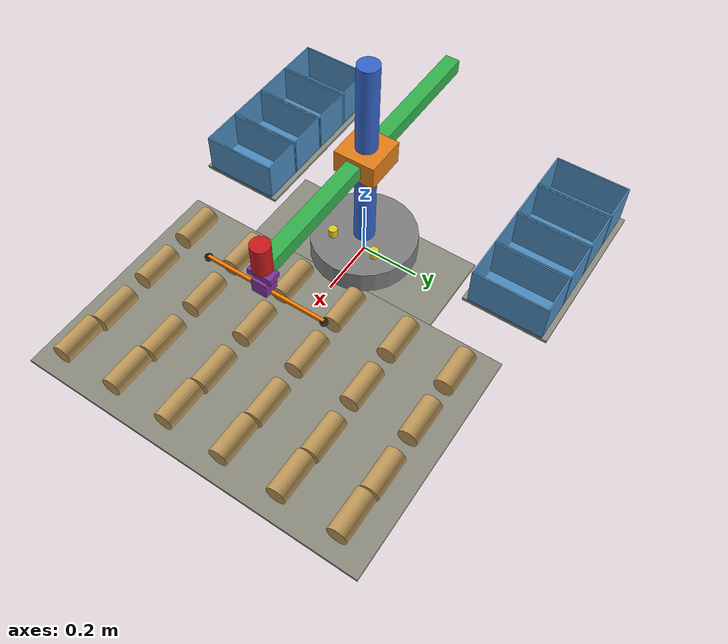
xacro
<?xml version="1.0"?>
<robot name="soki_sim" xmlns:xacro="http://www.ros.org/wiki/xacro">

  <!-- 寸法パラメータ -->
  <xacro:property name="base_radius" value="0.18"/>
  <xacro:property name="base_height" value="0.08"/>

  <xacro:property name="mast_radius" value="0.035"/>
  <xacro:property name="mast_height" value="0.7"/>

  <xacro:property name="lift_size_xy" value="0.14"/>
  <xacro:property name="lift_size_z" value="0.08"/>
  <xacro:property name="z_lower" value="0.118"/>
  <xacro:property name="z_upper" value="0.508"/>

  <xacro:property name="arm_length" value="1.0195"/>
  <xacro:property name="arm_size_yz" value="0.05"/>
  <xacro:property name="r_lower" value="${-arm_length / 2}"/>
  <xacro:property name="r_upper" value="${arm_length / 2}"/>

  <xacro:property name="tip_radius" value="0.03"/>
  <xacro:property name="tip_height" value="0.1"/>

  <!-- motor1/motor2: z_joint/r_jointを駆動する差動機構のインジケータ -->
  <!-- z = mix_k*(m1+m2), r = mix_k*(m1-m2) の関係上、m1/m2の可動域は
       m1,m2 = z +/- r の取り得る範囲(z_lower+r_lower 〜 z_upper+r_upper)に一致させる -->
  <xacro:property name="motor_indicator_radius" value="0.015"/>
  <xacro:property name="motor_indicator_height" value="0.06"/>
  <xacro:property name="motor_offset_y" value="0.08"/>
  <xacro:property name="motor_lower" value="${z_lower + r_lower}"/>
  <xacro:property name="motor_upper" value="${z_upper + r_upper}"/>

  <xacro:property name="joint_velocity" value="1.0"/>
  <xacro:property name="joint_effort" value="10.0"/>

  <xacro:property name="root_theta_reduction" value="${112.0 / 24.0}"/>
  <xacro:property name="root_theta_limit" value="${12.5 / root_theta_reduction}"/>

  <!-- マテリアル -->
  <material name="base_grey">
    <color rgba="0.5 0.5 0.5 1.0"/>
  </material>
  <material name="turret_blue">
    <color rgba="0.2 0.4 0.8 1.0"/>
  </material>
  <material name="lift_orange">
    <color rgba="0.9 0.5 0.1 1.0"/>
  </material>
  <material name="arm_green">
    <color rgba="0.2 0.7 0.3 1.0"/>
  </material>
  <material name="tip_red">
    <color rgba="0.8 0.1 0.1 1.0"/>
  </material>
  <material name="motor_yellow">
    <color rgba="0.9 0.8 0.1 1.0"/>
  </material>
  <material name="board_grey">
    <color rgba="0.55 0.55 0.5 1.0"/>
  </material>
  <material name="work_tan">
    <color rgba="0.75 0.6 0.35 1.0"/>
  </material>

  <!-- base_link: 固定の台座 -->
  <link name="base_link">
    <visual>
      <origin xyz="0 0 ${base_height / 2}" rpy="0 0 0"/>
      <geometry>
        <cylinder radius="${base_radius}" length="${base_height}"/>
      </geometry>
      <material name="base_grey"/>
    </visual>
  </link>

  <!-- turret_link: 旋回台+マスト (root_theta_joint で旋回) -->
  <link name="turret_link">
    <visual>
      <origin xyz="0 0 ${mast_height / 2}" rpy="0 0 0"/>
      <geometry>
        <cylinder radius="${mast_radius}" length="${mast_height}"/>
      </geometry>
      <material name="turret_blue"/>
    </visual>
  </link>

  <joint name="root_theta_joint" type="revolute">
    <parent link="base_link"/>
    <child link="turret_link"/>
    <origin xyz="0 0 ${base_height}" rpy="0 0 0"/>
    <axis xyz="0 0 1"/>
    <dynamics damping="0.1"/>
    <limit lower="${-root_theta_limit}" upper="${root_theta_limit}"
           effort="${joint_effort}" velocity="${joint_velocity}"/>
  </joint>

  <!-- motor1_link/motor2_link: 差動機構の各モータ位置を示すインジケータ -->
  <!-- 実際の見た目(マスト昇降・アーム伸縮)を動かすのはz_joint/r_jointであり、
       motor1_joint/motor2_jointはturret_link横で上下するだけの表示専用リンク -->
  <link name="motor1_link">
    <visual>
      <origin xyz="0 0 0" rpy="0 0 0"/>
      <geometry>
        <cylinder radius="${motor_indicator_radius}" length="${motor_indicator_height}"/>
      </geometry>
      <material name="motor_yellow"/>
    </visual>
  </link>

  <joint name="motor1_joint" type="prismatic">
    <parent link="turret_link"/>
    <child link="motor1_link"/>
    <origin xyz="${mast_radius + 0.03} ${motor_offset_y} 0" rpy="0 0 0"/>
    <axis xyz="0 0 1"/>
    <limit lower="${motor_lower}" upper="${motor_upper}" effort="${joint_effort}" velocity="${joint_velocity}"/>
  </joint>

  <link name="motor2_link">
    <visual>
      <origin xyz="0 0 0" rpy="0 0 0"/>
      <geometry>
        <cylinder radius="${motor_indicator_radius}" length="${motor_indicator_height}"/>
      </geometry>
      <material name="motor_yellow"/>
    </visual>
  </link>

  <joint name="motor2_joint" type="prismatic">
    <parent link="turret_link"/>
    <child link="motor2_link"/>
    <origin xyz="${mast_radius + 0.03} ${-motor_offset_y} 0" rpy="0 0 0"/>
    <axis xyz="0 0 1"/>
    <limit lower="${motor_lower}" upper="${motor_upper}" effort="${joint_effort}" velocity="${joint_velocity}"/>
  </joint>

  <!-- lift_link: マストに沿って昇降するキャリッジ (z_joint) -->
  <link name="lift_link">
    <visual>
      <origin xyz="0 0 0" rpy="0 0 0"/>
      <geometry>
        <box size="${lift_size_xy} ${lift_size_xy} ${lift_size_z}"/>
      </geometry>
      <material name="lift_orange"/>
    </visual>
  </link>

  <joint name="z_joint" type="prismatic">
    <parent link="turret_link"/>
    <child link="lift_link"/>
    <origin xyz="0 0 ${lift_size_z / 2}" rpy="0 0 0"/>
    <axis xyz="0 0 1"/>
    <limit lower="${z_lower}" upper="${z_upper}" effort="${joint_effort}" velocity="${joint_velocity}"/>
  </joint>

  <!-- arm_link: キャリッジから水平に伸縮するアーム (r_joint) -->
  <!-- r_joint の原点(r=0)がアームの中心になるよう、visualはarm_link原点を中心に配置する -->
  <link name="arm_link">
    <visual>
      <origin xyz="0 0 0" rpy="0 0 0"/>
      <geometry>
        <box size="${arm_length} ${arm_size_yz} ${arm_size_yz}"/>
      </geometry>
      <material name="arm_green"/>
    </visual>
  </link>

  <joint name="r_joint" type="prismatic">
    <parent link="lift_link"/>
    <child link="arm_link"/>
    <origin xyz="0 0 0" rpy="0 0 0"/>
    <axis xyz="1 0 0"/>
    <limit lower="${r_lower}" upper="${r_upper}" effort="${joint_effort}" velocity="${joint_velocity}"/>
  </joint>

  <!-- tip_link: アーム先端で回転する手先 (tip_theta_joint) -->
  <link name="tip_link">
    <visual>
      <origin xyz="0 0 ${tip_height / 2}" rpy="0 0 0"/>
      <geometry>
        <cylinder radius="${tip_radius}" length="${tip_height}"/>
      </geometry>
      <material name="tip_red"/>
    </visual>
  </link>

  <joint name="tip_theta_joint" type="continuous">
    <parent link="arm_link"/>
    <child link="tip_link"/>
    <origin xyz="${arm_length / 2} 0 0" rpy="0 0 0"/>
    <axis xyz="0 0 1"/>
    <dynamics damping="0.1"/>
    <limit effort="${joint_effort}" velocity="${joint_velocity}"/>
  </joint>

  <xacro:property name="hand_deploy_size" value="0.05"/>
  <xacro:property name="hand_pitch_size" value="0.04"/>
  <xacro:property name="pad_radius" value="0.012"/>
  <xacro:property name="pad_height" value="0.008"/>
  <!-- 同一行のワーク間隔(command_gui_node.pyのWORK_COL_PITCHと一致させること)。
       展開(spread)状態でのパッド間隔に使う。 -->
  <xacro:property name="hand_row_pitch" value="0.200"/>
  <!-- 集約(gathered)後の正三角形の一辺。要実測、現状は仮値。 -->
  <xacro:property name="hand_gather_side" value="0.08"/>
  <xacro:property name="hand_pad_side_travel" value="0.174356"/>
  <xacro:property name="hand_pad_side_axis_x" value="0"/>
  <xacro:property name="hand_pad_side_axis_y" value="0.917663"/>
  <xacro:property name="hand_pad_side_axis_z" value="-0.397360"/>
  <xacro:property name="hand_servo_lower" value="0.0"/>
  <xacro:property name="hand_servo_upper" value="${pi / 2}"/>
  <xacro:property name="hand_indicator_length" value="${hand_row_pitch * 2}"/>
  <xacro:property name="hand_indicator_thickness" value="0.01"/>

  <material name="hand_purple">
    <color rgba="0.5 0.2 0.6 1.0"/>
  </material>
  <material name="pad_black">
    <color rgba="0.1 0.1 0.1 1.0"/>
  </material>
  <material name="hand_indicator_orange">
    <color rgba="1.0 0.5 0.0 1.0"/>
  </material>

  <xacro:property name="hand_offset_limit" value="0.3"/>

  <link name="hand_offset_x_link"/>
  <joint name="hand_offset_x_joint" type="prismatic">
    <parent link="tip_link"/>
    <child link="hand_offset_x_link"/>
    <origin xyz="0 0 0" rpy="0 0 0"/>
    <axis xyz="1 0 0"/>
    <limit lower="${-hand_offset_limit}" upper="${hand_offset_limit}"
           effort="${joint_effort}" velocity="${joint_velocity}"/>
  </joint>

  <link name="hand_offset_y_link"/>
  <joint name="hand_offset_y_joint" type="prismatic">
    <parent link="hand_offset_x_link"/>
    <child link="hand_offset_y_link"/>
    <origin xyz="0 0 0" rpy="0 0 0"/>
    <axis xyz="0 1 0"/>
    <limit lower="${-hand_offset_limit}" upper="${hand_offset_limit}"
           effort="${joint_effort}" velocity="${joint_velocity}"/>
  </joint>

  <link name="hand_offset_link"/>
  <joint name="hand_offset_z_joint" type="prismatic">
    <parent link="hand_offset_y_link"/>
    <child link="hand_offset_link"/>
    <origin xyz="0 0 0" rpy="0 0 0"/>
    <axis xyz="0 0 1"/>
    <limit lower="${-hand_offset_limit}" upper="${hand_offset_limit}"
           effort="${joint_effort}" velocity="${joint_velocity}"/>
  </joint>

  <!-- ワークピッチ変更サーボ(pitch): 保持(0deg)/投入(90deg)相当。シューティング
       ボックスへ縦向きに投入するため、吸着パッド一式(=保持したワーク)の
       向きを変える。hand_offset_link(tip_linkの下面、関節原点、z=0を基準に
       ハンド取付オフセットを適用した位置)に取り付く。 -->
  <link name="hand_pitch_link">
    <visual>
      <origin xyz="0 0 ${-hand_pitch_size / 2}" rpy="0 0 0"/>
      <geometry>
        <box size="${hand_pitch_size} ${hand_pitch_size * 2} ${hand_pitch_size / 2}"/>
      </geometry>
      <material name="hand_purple"/>
    </visual>
  </link>

  <joint name="hand_pitch_joint" type="revolute">
    <parent link="hand_offset_link"/>
    <child link="hand_pitch_link"/>
    <origin xyz="0 0 0" rpy="0 0 0"/>
    <axis xyz="0 1 0"/>
    <limit lower="${hand_servo_lower}" upper="${hand_servo_upper}"
           effort="${joint_effort}" velocity="${joint_velocity}"/>
  </joint>

  <!-- ハンド本体(取付ブラケット相当、固定)。3つの吸着パッドはここから
       spread(同一行のワーク間隔)⇔gathered(正三角形)へprismatic関節で動く。
       hand_pitch_linkの下面に取り付くため、pitch回転と一緒にパッド一式も
       向きが変わる。 -->
  <link name="hand_deploy_link">
    <visual>
      <origin xyz="0 0 ${-hand_deploy_size / 2}" rpy="0 0 0"/>
      <geometry>
        <box size="${hand_deploy_size} ${hand_deploy_size} ${hand_deploy_size}"/>
      </geometry>
      <material name="hand_purple"/>
    </visual>
  </link>

  <joint name="hand_deploy_mount_joint" type="fixed">
    <parent link="hand_pitch_link"/>
    <child link="hand_deploy_link"/>
    <origin xyz="0 0 ${-hand_pitch_size}" rpy="0 0 0"/>
  </joint>

  <!-- ハンドの向きインジケータ(固定、見た目のみ)。アーム(x軸方向)に対して
       直角(y軸方向)に、展開(spread)時の3パッドの並びとちょうど同じ長さの
       バーを配置する。パッド同士を繋ぐ可動棒(2026-09-03に一度追加したが
       同日廃止)の代わりに、ハンドの向きを一目で判別するための固定参照物と
       して追加した(2026-09-03)。 -->
  <link name="hand_indicator_link">
    <visual>
      <origin xyz="0 0 0" rpy="0 0 0"/>
      <geometry>
        <box size="${hand_indicator_thickness} ${hand_indicator_length} ${hand_indicator_thickness}"/>
      </geometry>
      <material name="hand_indicator_orange"/>
    </visual>
  </link>

  <joint name="hand_indicator_joint" type="fixed">
    <parent link="hand_deploy_link"/>
    <child link="hand_indicator_link"/>
    <origin xyz="0 0 ${-hand_deploy_size}" rpy="0 0 0"/>
  </joint>

  <xacro:macro name="suction_pad" params="name origin_y axis_x axis_y axis_z travel">
    <link name="${name}">
      <visual>
        <origin xyz="0 0 ${-pad_height / 2}" rpy="0 0 0"/>
        <geometry>
          <cylinder radius="${pad_radius}" length="${pad_height}"/>
        </geometry>
        <material name="pad_black"/>
      </visual>
    </link>
    <joint name="${name}_joint" type="prismatic">
      <parent link="hand_deploy_link"/>
      <child link="${name}"/>
      <origin xyz="0 ${origin_y} ${-hand_deploy_size}" rpy="0 0 0"/>
      <axis xyz="${axis_x} ${axis_y} ${axis_z}"/>
      <limit lower="0" upper="${travel}" effort="${joint_effort}" velocity="${joint_velocity}"/>
    </joint>
  </xacro:macro>
  <!-- joint値0=spread(同一行のワーク間隔で並ぶ)、joint値=travel(上限)で
       gathered(正三角形、フィールド側=-zへも近づく)になる。
       suction_pad_2(中央)はtravel=0で動かず、spread時の位置がそのまま
       正三角形の1頂点になる。 -->
  <xacro:suction_pad name="suction_pad_1" origin_y="${-hand_row_pitch}"
                      axis_x="${hand_pad_side_axis_x}" axis_y="${hand_pad_side_axis_y}"
                      axis_z="${hand_pad_side_axis_z}" travel="${hand_pad_side_travel}"/>
  <xacro:suction_pad name="suction_pad_2" origin_y="0" axis_x="1" axis_y="0"
                      axis_z="0" travel="0"/>
  <xacro:suction_pad name="suction_pad_3" origin_y="${hand_row_pitch}"
                      axis_x="${hand_pad_side_axis_x}" axis_y="${-hand_pad_side_axis_y}"
                      axis_z="${hand_pad_side_axis_z}" travel="${hand_pad_side_travel}"/>

  <xacro:property name="machine_origin_offset_limit" value="1.0"/>

  <link name="machine_origin_x_link"/>
  <joint name="machine_origin_x_joint" type="prismatic">
    <parent link="base_link"/>
    <child link="machine_origin_x_link"/>
    <origin xyz="0 0 0" rpy="0 0 0"/>
    <axis xyz="1 0 0"/>
    <limit lower="${-machine_origin_offset_limit}" upper="${machine_origin_offset_limit}"
           effort="${joint_effort}" velocity="${joint_velocity}"/>
  </joint>

  <link name="machine_origin_y_link"/>
  <joint name="machine_origin_y_joint" type="prismatic">
    <parent link="machine_origin_x_link"/>
    <child link="machine_origin_y_link"/>
    <origin xyz="0 0 0" rpy="0 0 0"/>
    <axis xyz="0 1 0"/>
    <limit lower="${-machine_origin_offset_limit}" upper="${machine_origin_offset_limit}"
           effort="${joint_effort}" velocity="${joint_velocity}"/>
  </joint>

  <link name="machine_origin_link"/>
  <joint name="machine_origin_z_joint" type="prismatic">
    <parent link="machine_origin_y_link"/>
    <child link="machine_origin_link"/>
    <origin xyz="0 0 0" rpy="0 0 0"/>
    <axis xyz="0 0 1"/>
    <limit lower="${-machine_origin_offset_limit}" upper="${machine_origin_offset_limit}"
           effort="${joint_effort}" velocity="${joint_velocity}"/>
  </joint>

  <!-- 機体が乗っている板 -->
  <xacro:property name="field_robot_board_width" value="0.690"/>
  <xacro:property name="field_robot_board_depth" value="0.290"/>
  <!-- 板の厚み(実測値未確認のため仮値。前面の板も同じ高さとして扱う) -->
  <xacro:property name="field_board_thickness" value="0.01"/>

  <!-- machine_origin_link(機体原点)から、板の前端(ワーク側。以下の49mm等はここが基準)
       までの奥行き方向オフセット。現状は板の奥行き中心にロボットが乗っている想定
       (290mm/2)。実機のロボット搭載位置に合わせてここだけ調整すればよい -->
  <xacro:property name="field_board_edge_offset" value="${field_robot_board_depth / 2}"/>

  <!-- 前面の板(ワークが並ぶ側)。幅・奥行きは仕様未指定のため、
       ワーク配置(4行分)+余白を確保する仮の大きさにしている -->
  <xacro:property name="field_front_board_width" value="1.20"/>
  <xacro:property name="field_front_board_margin" value="0.05"/>

  <!-- ワーク(円柱、横倒し。軸方向=奥行き(X)方向、底面(1行目に近い面)を機体側とする) -->
  <xacro:property name="work_diameter" value="0.066"/>
  <xacro:property name="work_length" value="0.142"/>
  <xacro:property name="work_rest_z" value="${work_diameter / 2}"/>

  <!-- 行間隔(奥行き方向)。板前端から1行目近位端まで49mm、以降 行間58/58/13mm -->
  <xacro:property name="field_row_gap0" value="0.049"/>
  <xacro:property name="field_row_gap1" value="0.058"/>
  <xacro:property name="field_row_gap2" value="0.058"/>
  <xacro:property name="field_row_gap3" value="0.013"/>
  <xacro:property name="field_row4_z_lift" value="0.020"/>

  <!-- 各行の近位端(機体側の底面)・遠位端のX座標(machine_origin_link基準) -->
  <xacro:property name="row1_near_x" value="${field_board_edge_offset + field_row_gap0}"/>
  <xacro:property name="row1_far_x" value="${row1_near_x + work_length}"/>
  <xacro:property name="row2_near_x" value="${row1_far_x + field_row_gap1}"/>
  <xacro:property name="row2_far_x" value="${row2_near_x + work_length}"/>
  <xacro:property name="row3_near_x" value="${row2_far_x + field_row_gap2}"/>
  <xacro:property name="row3_far_x" value="${row3_near_x + work_length}"/>
  <xacro:property name="row4_near_x" value="${row3_far_x + field_row_gap3}"/>
  <xacro:property name="row4_far_x" value="${row4_near_x + work_length}"/>

  <!-- 各行の中心X座標・高さ(4行目のみ20mm高い) -->
  <xacro:property name="row1_x" value="${row1_near_x + work_length / 2}"/>
  <xacro:property name="row2_x" value="${row2_near_x + work_length / 2}"/>
  <xacro:property name="row3_x" value="${row3_near_x + work_length / 2}"/>
  <xacro:property name="row4_x" value="${row4_near_x + work_length / 2}"/>
  <xacro:property name="row1_z" value="${work_rest_z}"/>
  <xacro:property name="row2_z" value="${work_rest_z}"/>
  <xacro:property name="row3_z" value="${work_rest_z}"/>
  <xacro:property name="row4_z" value="${work_rest_z + field_row4_z_lift}"/>

  <!-- 列(幅方向、6列)の中心間ピッチ200mmと各列Y座標(ワーク群中心線=Y0に整列) -->
  <xacro:property name="work_col_pitch" value="0.200"/>
  <xacro:property name="col1_y" value="${-2.5 * work_col_pitch}"/>
  <xacro:property name="col2_y" value="${-1.5 * work_col_pitch}"/>
  <xacro:property name="col3_y" value="${-0.5 * work_col_pitch}"/>
  <xacro:property name="col4_y" value="${0.5 * work_col_pitch}"/>
  <xacro:property name="col5_y" value="${1.5 * work_col_pitch}"/>
  <xacro:property name="col6_y" value="${2.5 * work_col_pitch}"/>

  <xacro:property name="field_front_board_depth"
                   value="${row4_far_x - field_board_edge_offset + field_front_board_margin}"/>

  <!-- 機体が乗っている板の中心X座標(machine_origin_link基準) -->
  <xacro:property name="field_robot_board_center_x" value="${field_board_edge_offset - field_robot_board_depth / 2}"/>

  <!-- 機体が乗っている板 -->
  <link name="robot_board_link">
    <visual>
      <origin xyz="${field_board_edge_offset - field_robot_board_depth / 2} 0 ${-field_board_thickness / 2}" rpy="0 0 0"/>
      <geometry>
        <box size="${field_robot_board_depth} ${field_robot_board_width} ${field_board_thickness}"/>
      </geometry>
      <material name="board_grey"/>
    </visual>
  </link>
  <joint name="robot_board_joint" type="fixed">
    <parent link="machine_origin_link"/>
    <child link="robot_board_link"/>
  </joint>

  <!-- 前面の板(ワーク設置面。機体の板と同じ高さ) -->
  <link name="front_board_link">
    <visual>
      <origin xyz="${field_board_edge_offset + field_front_board_depth / 2} 0 ${-field_board_thickness / 2}" rpy="0 0 0"/>
      <geometry>
        <box size="${field_front_board_depth} ${field_front_board_width} ${field_board_thickness}"/>
      </geometry>
      <material name="board_grey"/>
    </visual>
  </link>
  <joint name="front_board_joint" type="fixed">
    <parent link="machine_origin_link"/>
    <child link="front_board_link"/>
  </joint>

  <!-- ワーク(円柱、横倒し) -->
  <xacro:macro name="workpiece" params="name x y z">
    <link name="${name}">
      <visual>
        <origin xyz="0 0 0" rpy="0 ${pi / 2} 0"/>
        <geometry>
          <cylinder radius="${work_diameter / 2}" length="${work_length}"/>
        </geometry>
        <material name="work_tan"/>
      </visual>
    </link>
    <joint name="${name}_joint" type="fixed">
      <parent link="machine_origin_link"/>
      <child link="${name}"/>
      <origin xyz="${x} ${y} ${z}" rpy="0 0 0"/>
    </joint>
  </xacro:macro>

  <xacro:workpiece name="work_1_1" x="${row1_x}" y="${col1_y}" z="${row1_z}"/>
  <xacro:workpiece name="work_1_2" x="${row1_x}" y="${col2_y}" z="${row1_z}"/>
  <xacro:workpiece name="work_1_3" x="${row1_x}" y="${col3_y}" z="${row1_z}"/>
  <xacro:workpiece name="work_1_4" x="${row1_x}" y="${col4_y}" z="${row1_z}"/>
  <xacro:workpiece name="work_1_5" x="${row1_x}" y="${col5_y}" z="${row1_z}"/>
  <xacro:workpiece name="work_1_6" x="${row1_x}" y="${col6_y}" z="${row1_z}"/>

  <xacro:workpiece name="work_2_1" x="${row2_x}" y="${col1_y}" z="${row2_z}"/>
  <xacro:workpiece name="work_2_2" x="${row2_x}" y="${col2_y}" z="${row2_z}"/>
  <xacro:workpiece name="work_2_3" x="${row2_x}" y="${col3_y}" z="${row2_z}"/>
  <xacro:workpiece name="work_2_4" x="${row2_x}" y="${col4_y}" z="${row2_z}"/>
  <xacro:workpiece name="work_2_5" x="${row2_x}" y="${col5_y}" z="${row2_z}"/>
  <xacro:workpiece name="work_2_6" x="${row2_x}" y="${col6_y}" z="${row2_z}"/>

  <xacro:workpiece name="work_3_1" x="${row3_x}" y="${col1_y}" z="${row3_z}"/>
  <xacro:workpiece name="work_3_2" x="${row3_x}" y="${col2_y}" z="${row3_z}"/>
  <xacro:workpiece name="work_3_3" x="${row3_x}" y="${col3_y}" z="${row3_z}"/>
  <xacro:workpiece name="work_3_4" x="${row3_x}" y="${col4_y}" z="${row3_z}"/>
  <xacro:workpiece name="work_3_5" x="${row3_x}" y="${col5_y}" z="${row3_z}"/>
  <xacro:workpiece name="work_3_6" x="${row3_x}" y="${col6_y}" z="${row3_z}"/>

  <xacro:workpiece name="work_4_1" x="${row4_x}" y="${col1_y}" z="${row4_z}"/>
  <xacro:workpiece name="work_4_2" x="${row4_x}" y="${col2_y}" z="${row4_z}"/>
  <xacro:workpiece name="work_4_3" x="${row4_x}" y="${col3_y}" z="${row4_z}"/>
  <xacro:workpiece name="work_4_4" x="${row4_x}" y="${col4_y}" z="${row4_z}"/>
  <xacro:workpiece name="work_4_5" x="${row4_x}" y="${col5_y}" z="${row4_z}"/>
  <xacro:workpiece name="work_4_6" x="${row4_x}" y="${col6_y}" z="${row4_z}"/>

  <!-- ==================== シューティングエリア(左右) ====================
       ワークをシュートして集める左右のエリア。機体が乗っている板の中心から
       ワークと反対方向(-X)に305mm、そこからさらに左右(Y)に525mmの位置が
       各エリアの板の中心。板の短辺(300mm)がワーク底面と平行(=X方向)。 -->

  <xacro:property name="shoot_offset_x" value="0.305"/>
  <xacro:property name="shoot_offset_y" value="0.525"/>
  <xacro:property name="shoot_board_width" value="0.300"/>
  <xacro:property name="shoot_board_depth" value="0.600"/>
  <xacro:property name="shoot_center_x" value="${field_robot_board_center_x - shoot_offset_x}"/>

  <material name="shoot_box_material">
    <color rgba="0.3 0.55 0.75 1.0"/>
  </material>

  <xacro:macro name="shoot_board" params="name y">
    <link name="${name}">
      <visual>
        <origin xyz="${shoot_center_x} ${y} ${-field_board_thickness / 2}" rpy="0 0 0"/>
        <geometry>
          <box size="${shoot_board_depth} ${shoot_board_width} ${field_board_thickness}"/>
        </geometry>
        <material name="board_grey"/>
      </visual>
    </link>
    <joint name="${name}_joint" type="fixed">
      <parent link="machine_origin_link"/>
      <child link="${name}"/>
    </joint>
  </xacro:macro>

  <xacro:shoot_board name="shoot_board_left" y="${shoot_offset_y}"/>
  <xacro:shoot_board name="shoot_board_right" y="${-shoot_offset_y}"/>

  <!-- シュートを受ける箱(内径255x138、高さ145、板厚5mm、上面開放の5枚組)。
       長辺(255mm)がワーク底面と平行(=Y方向)。板幅300mmには1個しか並ばないため
       奥行き(X)方向に4個、箱間2mmの隙間をあけて板の奥行き中心に揃えて並べる。 -->
  <xacro:property name="shoot_box_inner_x" value="0.138"/>
  <xacro:property name="shoot_box_inner_y" value="0.255"/>
  <xacro:property name="shoot_box_wall" value="0.005"/>
  <xacro:property name="shoot_box_height" value="0.145"/>
  <xacro:property name="shoot_box_outer_x" value="${shoot_box_inner_x + 2 * shoot_box_wall}"/>
  <xacro:property name="shoot_box_outer_y" value="${shoot_box_inner_y + 2 * shoot_box_wall}"/>
  <xacro:property name="shoot_box_wall_height" value="${shoot_box_height - shoot_box_wall}"/>
  <xacro:property name="shoot_box_gap" value="0.002"/>
  <xacro:property name="shoot_box_pitch" value="${shoot_box_outer_x + shoot_box_gap}"/>

  <xacro:property name="shoot_box_pos1" value="${-1.5 * shoot_box_pitch}"/>
  <xacro:property name="shoot_box_pos2" value="${-0.5 * shoot_box_pitch}"/>
  <xacro:property name="shoot_box_pos3" value="${0.5 * shoot_box_pitch}"/>
  <xacro:property name="shoot_box_pos4" value="${1.5 * shoot_box_pitch}"/>

  <xacro:macro name="shoot_box" params="name x y">
    <link name="${name}">
      <visual>
        <origin xyz="0 0 ${shoot_box_wall / 2}" rpy="0 0 0"/>
        <geometry>
          <box size="${shoot_box_outer_x} ${shoot_box_outer_y} ${shoot_box_wall}"/>
        </geometry>
        <material name="shoot_box_material"/>
      </visual>
      <visual>
        <origin xyz="${shoot_box_outer_x / 2 - shoot_box_wall / 2} 0 ${shoot_box_wall + shoot_box_wall_height / 2}" rpy="0 0 0"/>
        <geometry>
          <box size="${shoot_box_wall} ${shoot_box_outer_y} ${shoot_box_wall_height}"/>
        </geometry>
        <material name="shoot_box_material"/>
      </visual>
      <visual>
        <origin xyz="${-(shoot_box_outer_x / 2 - shoot_box_wall / 2)} 0 ${shoot_box_wall + shoot_box_wall_height / 2}" rpy="0 0 0"/>
        <geometry>
          <box size="${shoot_box_wall} ${shoot_box_outer_y} ${shoot_box_wall_height}"/>
        </geometry>
        <material name="shoot_box_material"/>
      </visual>
      <visual>
        <origin xyz="0 ${shoot_box_outer_y / 2 - shoot_box_wall / 2} ${shoot_box_wall + shoot_box_wall_height / 2}" rpy="0 0 0"/>
        <geometry>
          <box size="${shoot_box_inner_x} ${shoot_box_wall} ${shoot_box_wall_height}"/>
        </geometry>
        <material name="shoot_box_material"/>
      </visual>
      <visual>
        <origin xyz="0 ${-(shoot_box_outer_y / 2 - shoot_box_wall / 2)} ${shoot_box_wall + shoot_box_wall_height / 2}" rpy="0 0 0"/>
        <geometry>
          <box size="${shoot_box_inner_x} ${shoot_box_wall} ${shoot_box_wall_height}"/>
        </geometry>
        <material name="shoot_box_material"/>
      </visual>
    </link>
    <joint name="${name}_joint" type="fixed">
      <parent link="machine_origin_link"/>
      <child link="${name}"/>
      <origin xyz="${x} ${y} 0" rpy="0 0 0"/>
    </joint>
  </xacro:macro>

  <xacro:shoot_box name="shoot_box_left_1" x="${shoot_center_x + shoot_box_pos1}" y="${shoot_offset_y}"/>
  <xacro:shoot_box name="shoot_box_left_2" x="${shoot_center_x + shoot_box_pos2}" y="${shoot_offset_y}"/>
  <xacro:shoot_box name="shoot_box_left_3" x="${shoot_center_x + shoot_box_pos3}" y="${shoot_offset_y}"/>
  <xacro:shoot_box name="shoot_box_left_4" x="${shoot_center_x + shoot_box_pos4}" y="${shoot_offset_y}"/>

  <xacro:shoot_box name="shoot_box_right_1" x="${shoot_center_x + shoot_box_pos1}" y="${-shoot_offset_y}"/>
  <xacro:shoot_box name="shoot_box_right_2" x="${shoot_center_x + shoot_box_pos2}" y="${-shoot_offset_y}"/>
  <xacro:shoot_box name="shoot_box_right_3" x="${shoot_center_x + shoot_box_pos3}" y="${-shoot_offset_y}"/>
  <xacro:shoot_box name="shoot_box_right_4" x="${shoot_center_x + shoot_box_pos4}" y="${-shoot_offset_y}"/>

</robot>
